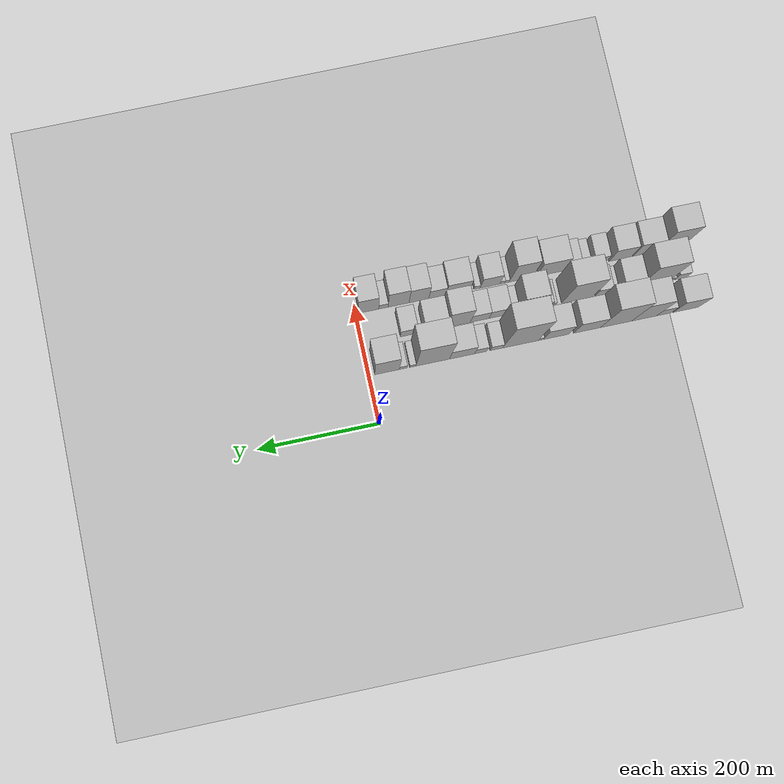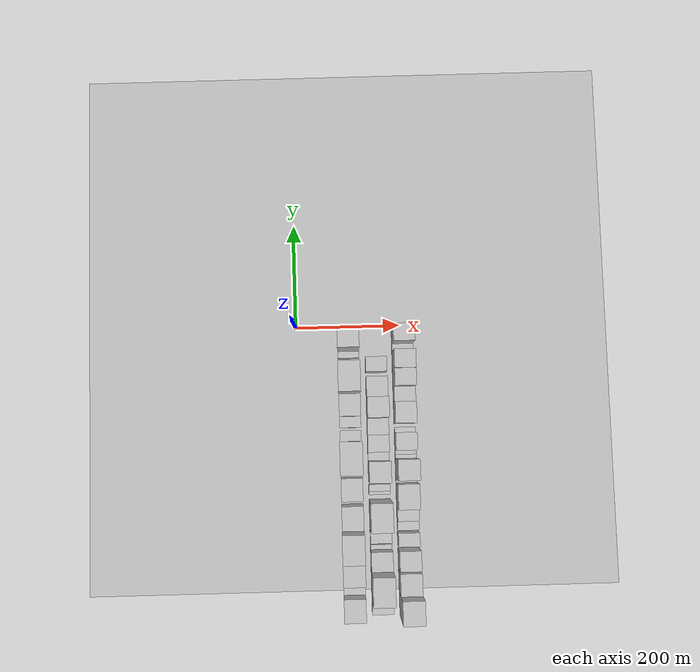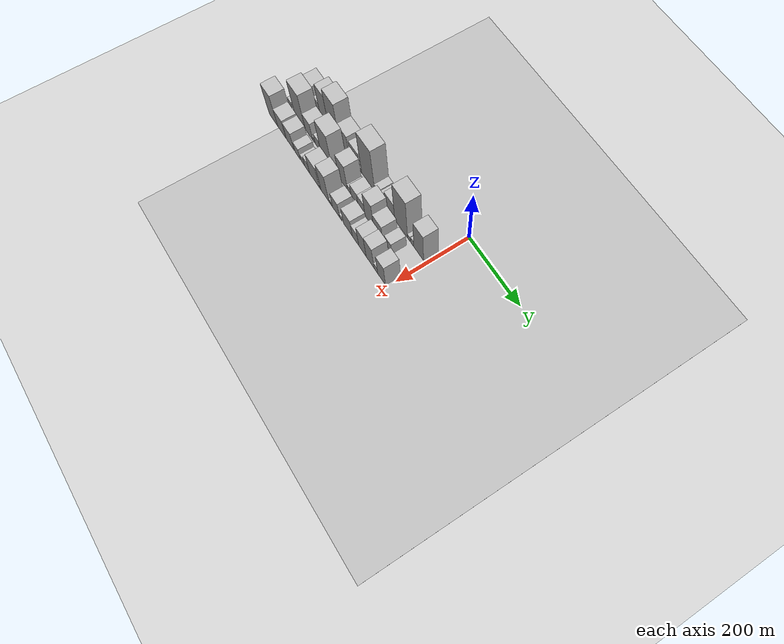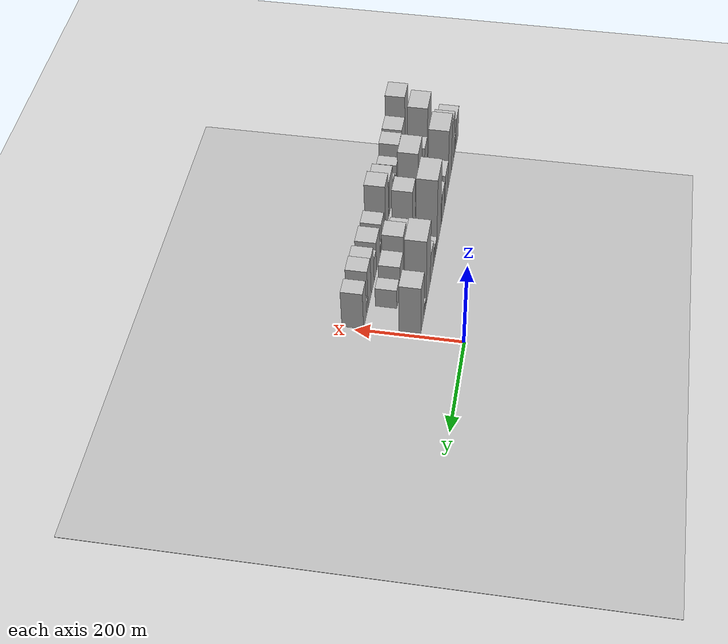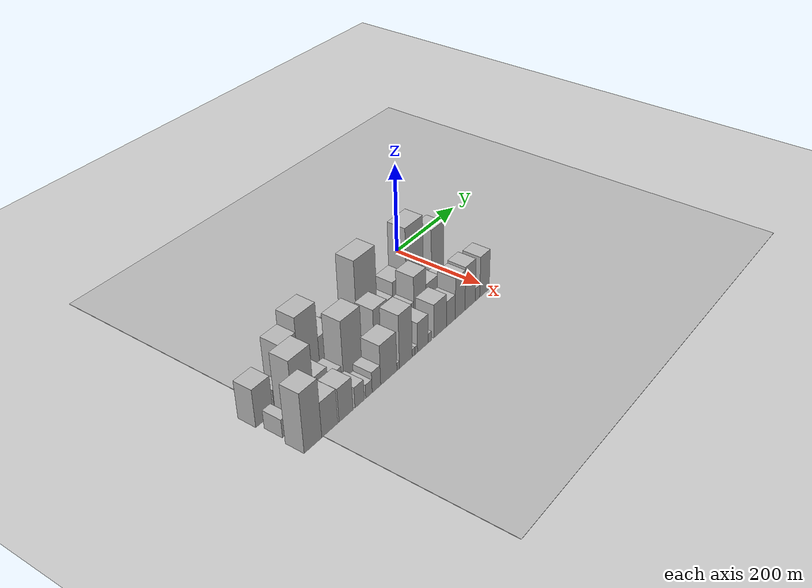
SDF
<sdf version="1.6">
 <world name="default">
  <include><name>ground_plane_1</name><uri>model://HANNAS_ground_plane</uri></include>
  <include>
   <name>ground_plane_2</name>
   <uri>model://HANNAS_ground_plane</uri>
   <pose>100 0 0  0 0 0</pose>
  </include>
  <model name="building_1">
   <static>1</static>
   <pose>100.0000 -526.6972 0 0.000000 0.000000 0.000000</pose>
   <link name="link">
    <pose>0 0 40.50 0 0 0</pose>
    <collision name="collision"><geometry><box><size>40.0000 42.6056 81.0000</size></box></geometry></collision>
    <visual name="visual">
     <cast_shadows>0</cast_shadows>
     <geometry><box><size>40.0000 42.6056 81.0000</size></box></geometry>
     <material>
      <script>
       <uri>model://HANNAS_wall/materials/scripts</uri>
       <uri>model://HANNAS_wall/materials/textures</uri>
       <name>vrc/HANNAS_wall</name>
      </script>
     </material>
    </visual>
   </link>
  </model>
  <model name="building_2">
   <static>1</static>
   <pose>100.0000 -490.2368 0 0.000000 0.000000 0.000000</pose>
   <link name="link">
    <pose>0 0 24.00 0 0 0</pose>
    <collision name="collision"><geometry><box><size>40.0000 24.3152 48.0000</size></box></geometry></collision>
    <visual name="visual">
     <cast_shadows>0</cast_shadows>
     <geometry><box><size>40.0000 24.3152 48.0000</size></box></geometry>
     <material>
      <script>
       <uri>model://HANNAS_wall/materials/scripts</uri>
       <uri>model://HANNAS_wall/materials/textures</uri>
       <name>vrc/HANNAS_wall</name>
      </script>
     </material>
    </visual>
   </link>
  </model>
  <model name="building_3">
   <static>1</static>
   <pose>100.0000 -457.3275 0 0.000000 0.000000 0.000000</pose>
   <link name="link">
    <pose>0 0 63.00 0 0 0</pose>
    <collision name="collision"><geometry><box><size>40.0000 41.5033 126.0000</size></box></geometry></collision>
    <visual name="visual">
     <cast_shadows>0</cast_shadows>
     <geometry><box><size>40.0000 41.5033 126.0000</size></box></geometry>
     <material>
      <script>
       <uri>model://HANNAS_wall/materials/scripts</uri>
       <uri>model://HANNAS_wall/materials/textures</uri>
       <name>vrc/HANNAS_wall</name>
      </script>
     </material>
    </visual>
   </link>
  </model>
  <model name="building_4">
   <static>1</static>
   <pose>100.0000 -410.2595 0 0.000000 0.000000 0.000000</pose>
   <link name="link">
    <pose>0 0 78.00 0 0 0</pose>
    <collision name="collision"><geometry><box><size>40.0000 52.6326 156.0000</size></box></geometry></collision>
    <visual name="visual">
     <cast_shadows>0</cast_shadows>
     <geometry><box><size>40.0000 52.6326 156.0000</size></box></geometry>
     <material>
      <script>
       <uri>model://HANNAS_wall/materials/scripts</uri>
       <uri>model://HANNAS_wall/materials/textures</uri>
       <name>vrc/HANNAS_wall</name>
      </script>
     </material>
    </visual>
   </link>
  </model>
  <model name="building_5">
   <static>1</static>
   <pose>100.0000 -361.5258 0 0.000000 0.000000 0.000000</pose>
   <link name="link">
    <pose>0 0 40.50 0 0 0</pose>
    <collision name="collision"><geometry><box><size>40.0000 44.8348 81.0000</size></box></geometry></collision>
    <visual name="visual">
     <cast_shadows>0</cast_shadows>
     <geometry><box><size>40.0000 44.8348 81.0000</size></box></geometry>
     <material>
      <script>
       <uri>model://HANNAS_wall/materials/scripts</uri>
       <uri>model://HANNAS_wall/materials/textures</uri>
       <name>vrc/HANNAS_wall</name>
      </script>
     </material>
    </visual>
   </link>
  </model>
  <model name="building_6">
   <static>1</static>
   <pose>100.0000 -309.7806 0 0.000000 0.000000 0.000000</pose>
   <link name="link">
    <pose>0 0 37.50 0 0 0</pose>
    <collision name="collision"><geometry><box><size>40.0000 42.6557 75.0000</size></box></geometry></collision>
    <visual name="visual">
     <cast_shadows>0</cast_shadows>
     <geometry><box><size>40.0000 42.6557 75.0000</size></box></geometry>
     <material>
      <script>
       <uri>model://HANNAS_wall/materials/scripts</uri>
       <uri>model://HANNAS_wall/materials/textures</uri>
       <name>vrc/HANNAS_wall</name>
      </script>
     </material>
    </visual>
   </link>
  </model>
  <model name="building_7">
   <static>1</static>
   <pose>100.0000 -284.2996 0 0.000000 0.000000 0.000000</pose>
   <link name="link">
    <pose>0 0 9.00 0 0 0</pose>
    <collision name="collision"><geometry><box><size>40.0000 8.3063 18.0000</size></box></geometry></collision>
    <visual name="visual">
     <cast_shadows>0</cast_shadows>
     <geometry><box><size>40.0000 8.3063 18.0000</size></box></geometry>
     <material>
      <script>
       <uri>model://HANNAS_wall/materials/scripts</uri>
       <uri>model://HANNAS_wall/materials/textures</uri>
       <name>vrc/HANNAS_wall</name>
      </script>
     </material>
    </visual>
   </link>
  </model>
  <model name="building_8">
   <static>1</static>
   <pose>100.0000 -250.4863 0 0.000000 0.000000 0.000000</pose>
   <link name="link">
    <pose>0 0 90.00 0 0 0</pose>
    <collision name="collision"><geometry><box><size>40.0000 59.3203 180.0000</size></box></geometry></collision>
    <visual name="visual">
     <cast_shadows>0</cast_shadows>
     <geometry><box><size>40.0000 59.3203 180.0000</size></box></geometry>
     <material>
      <script>
       <uri>model://HANNAS_wall/materials/scripts</uri>
       <uri>model://HANNAS_wall/materials/textures</uri>
       <name>vrc/HANNAS_wall</name>
      </script>
     </material>
    </visual>
   </link>
  </model>
  <model name="building_9">
   <static>1</static>
   <pose>100.0000 -210.4761 0 0.000000 0.000000 0.000000</pose>
   <link name="link">
    <pose>0 0 18.00 0 0 0</pose>
    <collision name="collision"><geometry><box><size>40.0000 20.7000 36.0000</size></box></geometry></collision>
    <visual name="visual">
     <cast_shadows>0</cast_shadows>
     <geometry><box><size>40.0000 20.7000 36.0000</size></box></geometry>
     <material>
      <script>
       <uri>model://HANNAS_wall/materials/scripts</uri>
       <uri>model://HANNAS_wall/materials/textures</uri>
       <name>vrc/HANNAS_wall</name>
      </script>
     </material>
    </visual>
   </link>
  </model>
  <model name="building_10">
   <static>1</static>
   <pose>100.0000 -184.6078 0 0.000000 0.000000 0.000000</pose>
   <link name="link">
    <pose>0 0 21.00 0 0 0</pose>
    <collision name="collision"><geometry><box><size>40.0000 21.0366 42.0000</size></box></geometry></collision>
    <visual name="visual">
     <cast_shadows>0</cast_shadows>
     <geometry><box><size>40.0000 21.0366 42.0000</size></box></geometry>
     <material>
      <script>
       <uri>model://HANNAS_wall/materials/scripts</uri>
       <uri>model://HANNAS_wall/materials/textures</uri>
       <name>vrc/HANNAS_wall</name>
      </script>
     </material>
    </visual>
   </link>
  </model>
  <model name="building_11">
   <static>1</static>
   <pose>100.0000 -153.2782 0 0.000000 0.000000 0.000000</pose>
   <link name="link">
    <pose>0 0 36.00 0 0 0</pose>
    <collision name="collision"><geometry><box><size>40.0000 41.6225 72.0000</size></box></geometry></collision>
    <visual name="visual">
     <cast_shadows>0</cast_shadows>
     <geometry><box><size>40.0000 41.6225 72.0000</size></box></geometry>
     <material>
      <script>
       <uri>model://HANNAS_wall/materials/scripts</uri>
       <uri>model://HANNAS_wall/materials/textures</uri>
       <name>vrc/HANNAS_wall</name>
      </script>
     </material>
    </visual>
   </link>
  </model>
  <model name="building_12">
   <static>1</static>
   <pose>100.0000 -104.8603 0 0.000000 0.000000 0.000000</pose>
   <link name="link">
    <pose>0 0 84.00 0 0 0</pose>
    <collision name="collision"><geometry><box><size>40.0000 55.2134 168.0000</size></box></geometry></collision>
    <visual name="visual">
     <cast_shadows>0</cast_shadows>
     <geometry><box><size>40.0000 55.2134 168.0000</size></box></geometry>
     <material>
      <script>
       <uri>model://HANNAS_wall/materials/scripts</uri>
       <uri>model://HANNAS_wall/materials/textures</uri>
       <name>vrc/HANNAS_wall</name>
      </script>
     </material>
    </visual>
   </link>
  </model>
  <model name="building_13">
   <static>1</static>
   <pose>100.0000 -72.0051 0 0.000000 0.000000 0.000000</pose>
   <link name="link">
    <pose>0 0 10.50 0 0 0</pose>
    <collision name="collision"><geometry><box><size>40.0000 10.4969 21.0000</size></box></geometry></collision>
    <visual name="visual">
     <cast_shadows>0</cast_shadows>
     <geometry><box><size>40.0000 10.4969 21.0000</size></box></geometry>
     <material>
      <script>
       <uri>model://HANNAS_wall/materials/scripts</uri>
       <uri>model://HANNAS_wall/materials/textures</uri>
       <name>vrc/HANNAS_wall</name>
      </script>
     </material>
    </visual>
   </link>
  </model>
  <model name="building_14">
   <static>1</static>
   <pose>100.0000 -56.4145 0 0.000000 0.000000 0.000000</pose>
   <link name="link">
    <pose>0 0 13.50 0 0 0</pose>
    <collision name="collision"><geometry><box><size>40.0000 12.6842 27.0000</size></box></geometry></collision>
    <visual name="visual">
     <cast_shadows>0</cast_shadows>
     <geometry><box><size>40.0000 12.6842 27.0000</size></box></geometry>
     <material>
      <script>
       <uri>model://HANNAS_wall/materials/scripts</uri>
       <uri>model://HANNAS_wall/materials/textures</uri>
       <name>vrc/HANNAS_wall</name>
      </script>
     </material>
    </visual>
   </link>
  </model>
  <model name="building_15">
   <static>1</static>
   <pose>100.0000 -29.7221 0 0.000000 0.000000 0.000000</pose>
   <link name="link">
    <pose>0 0 60.00 0 0 0</pose>
    <collision name="collision"><geometry><box><size>40.0000 40.7008 120.0000</size></box></geometry></collision>
    <visual name="visual">
     <cast_shadows>0</cast_shadows>
     <geometry><box><size>40.0000 40.7008 120.0000</size></box></geometry>
     <material>
      <script>
       <uri>model://HANNAS_wall/materials/scripts</uri>
       <uri>model://HANNAS_wall/materials/textures</uri>
       <name>vrc/HANNAS_wall</name>
      </script>
     </material>
    </visual>
   </link>
  </model>
  <model name="building_32">
   <static>1</static>
   <pose>152.0000 -530.9299 0 0.000000 0.000000 0.000000</pose>
   <link name="link">
    <pose>0 0 19.50 0 0 0</pose>
    <collision name="collision"><geometry><box><size>40.0000 20.1402 39.0000</size></box></geometry></collision>
    <visual name="visual">
     <cast_shadows>0</cast_shadows>
     <geometry><box><size>40.0000 20.1402 39.0000</size></box></geometry>
     <material>
      <script>
       <uri>model://HANNAS_wall/materials/scripts</uri>
       <uri>model://HANNAS_wall/materials/textures</uri>
       <name>vrc/HANNAS_wall</name>
      </script>
     </material>
    </visual>
   </link>
  </model>
  <model name="building_33">
   <static>1</static>
   <pose>152.0000 -516.4928 0 0.000000 0.000000 0.000000</pose>
   <link name="link">
    <pose>0 0 9.00 0 0 0</pose>
    <collision name="collision"><geometry><box><size>40.0000 8.7341 18.0000</size></box></geometry></collision>
    <visual name="visual">
     <cast_shadows>0</cast_shadows>
     <geometry><box><size>40.0000 8.7341 18.0000</size></box></geometry>
     <material>
      <script>
       <uri>model://HANNAS_wall/materials/scripts</uri>
       <uri>model://HANNAS_wall/materials/textures</uri>
       <name>vrc/HANNAS_wall</name>
      </script>
     </material>
    </visual>
   </link>
  </model>
  <model name="building_34">
   <static>1</static>
   <pose>152.0000 -486.0516 0 0.000000 0.000000 0.000000</pose>
   <link name="link">
    <pose>0 0 70.50 0 0 0</pose>
    <collision name="collision"><geometry><box><size>40.0000 52.1482 141.0000</size></box></geometry></collision>
    <visual name="visual">
     <cast_shadows>0</cast_shadows>
     <geometry><box><size>40.0000 52.1482 141.0000</size></box></geometry>
     <material>
      <script>
       <uri>model://HANNAS_wall/materials/scripts</uri>
       <uri>model://HANNAS_wall/materials/textures</uri>
       <name>vrc/HANNAS_wall</name>
      </script>
     </material>
    </visual>
   </link>
  </model>
  <model name="building_35">
   <static>1</static>
   <pose>152.0000 -441.9299 0 0.000000 0.000000 0.000000</pose>
   <link name="link">
    <pose>0 0 34.50 0 0 0</pose>
    <collision name="collision"><geometry><box><size>40.0000 36.0953 69.0000</size></box></geometry></collision>
    <visual name="visual">
     <cast_shadows>0</cast_shadows>
     <geometry><box><size>40.0000 36.0953 69.0000</size></box></geometry>
     <material>
      <script>
       <uri>model://HANNAS_wall/materials/scripts</uri>
       <uri>model://HANNAS_wall/materials/textures</uri>
       <name>vrc/HANNAS_wall</name>
      </script>
     </material>
    </visual>
   </link>
  </model>
  <model name="building_36">
   <static>1</static>
   <pose>152.0000 -419.4189 0 0.000000 0.000000 0.000000</pose>
   <link name="link">
    <pose>0 0 10.50 0 0 0</pose>
    <collision name="collision"><geometry><box><size>40.0000 8.9266 21.0000</size></box></geometry></collision>
    <visual name="visual">
     <cast_shadows>0</cast_shadows>
     <geometry><box><size>40.0000 8.9266 21.0000</size></box></geometry>
     <material>
      <script>
       <uri>model://HANNAS_wall/materials/scripts</uri>
       <uri>model://HANNAS_wall/materials/textures</uri>
       <name>vrc/HANNAS_wall</name>
      </script>
     </material>
    </visual>
   </link>
  </model>
  <model name="building_37">
   <static>1</static>
   <pose>152.0000 -399.2062 0 0.000000 0.000000 0.000000</pose>
   <link name="link">
    <pose>0 0 22.50 0 0 0</pose>
    <collision name="collision"><geometry><box><size>40.0000 23.4989 45.0000</size></box></geometry></collision>
    <visual name="visual">
     <cast_shadows>0</cast_shadows>
     <geometry><box><size>40.0000 23.4989 45.0000</size></box></geometry>
     <material>
      <script>
       <uri>model://HANNAS_wall/materials/scripts</uri>
       <uri>model://HANNAS_wall/materials/textures</uri>
       <name>vrc/HANNAS_wall</name>
      </script>
     </material>
    </visual>
   </link>
  </model>
  <model name="building_38">
   <static>1</static>
   <pose>152.0000 -357.3748 0 0.000000 0.000000 0.000000</pose>
   <link name="link">
    <pose>0 0 69.00 0 0 0</pose>
    <collision name="collision"><geometry><box><size>40.0000 52.1639 138.0000</size></box></geometry></collision>
    <visual name="visual">
     <cast_shadows>0</cast_shadows>
     <geometry><box><size>40.0000 52.1639 138.0000</size></box></geometry>
     <material>
      <script>
       <uri>model://HANNAS_wall/materials/scripts</uri>
       <uri>model://HANNAS_wall/materials/textures</uri>
       <name>vrc/HANNAS_wall</name>
      </script>
     </material>
    </visual>
   </link>
  </model>
  <model name="building_39">
   <static>1</static>
   <pose>152.0000 -319.0195 0 0.000000 0.000000 0.000000</pose>
   <link name="link">
    <pose>0 0 7.50 0 0 0</pose>
    <collision name="collision"><geometry><box><size>40.0000 6.5467 15.0000</size></box></geometry></collision>
    <visual name="visual">
     <cast_shadows>0</cast_shadows>
     <geometry><box><size>40.0000 6.5467 15.0000</size></box></geometry>
     <material>
      <script>
       <uri>model://HANNAS_wall/materials/scripts</uri>
       <uri>model://HANNAS_wall/materials/textures</uri>
       <name>vrc/HANNAS_wall</name>
      </script>
     </material>
    </visual>
   </link>
  </model>
  <model name="building_40">
   <static>1</static>
   <pose>152.0000 -309.1297 0 0.000000 0.000000 0.000000</pose>
   <link name="link">
    <pose>0 0 13.50 0 0 0</pose>
    <collision name="collision"><geometry><box><size>40.0000 13.2327 27.0000</size></box></geometry></collision>
    <visual name="visual">
     <cast_shadows>0</cast_shadows>
     <geometry><box><size>40.0000 13.2327 27.0000</size></box></geometry>
     <material>
      <script>
       <uri>model://HANNAS_wall/materials/scripts</uri>
       <uri>model://HANNAS_wall/materials/textures</uri>
       <name>vrc/HANNAS_wall</name>
      </script>
     </material>
    </visual>
   </link>
  </model>
  <model name="building_41">
   <static>1</static>
   <pose>152.0000 -277.9080 0 0.000000 0.000000 0.000000</pose>
   <link name="link">
    <pose>0 0 54.00 0 0 0</pose>
    <collision name="collision"><geometry><box><size>40.0000 39.2107 108.0000</size></box></geometry></collision>
    <visual name="visual">
     <cast_shadows>0</cast_shadows>
     <geometry><box><size>40.0000 39.2107 108.0000</size></box></geometry>
     <material>
      <script>
       <uri>model://HANNAS_wall/materials/scripts</uri>
       <uri>model://HANNAS_wall/materials/textures</uri>
       <name>vrc/HANNAS_wall</name>
      </script>
     </material>
    </visual>
   </link>
  </model>
  <model name="building_42">
   <static>1</static>
   <pose>152.0000 -250.2431 0 0.000000 0.000000 0.000000</pose>
   <link name="link">
    <pose>0 0 15.00 0 0 0</pose>
    <collision name="collision"><geometry><box><size>40.0000 16.1190 30.0000</size></box></geometry></collision>
    <visual name="visual">
     <cast_shadows>0</cast_shadows>
     <geometry><box><size>40.0000 16.1190 30.0000</size></box></geometry>
     <material>
      <script>
       <uri>model://HANNAS_wall/materials/scripts</uri>
       <uri>model://HANNAS_wall/materials/textures</uri>
       <name>vrc/HANNAS_wall</name>
      </script>
     </material>
    </visual>
   </link>
  </model>
  <model name="building_43">
   <static>1</static>
   <pose>152.0000 -226.0797 0 0.000000 0.000000 0.000000</pose>
   <link name="link">
    <pose>0 0 27.00 0 0 0</pose>
    <collision name="collision"><geometry><box><size>40.0000 32.2078 54.0000</size></box></geometry></collision>
    <visual name="visual">
     <cast_shadows>0</cast_shadows>
     <geometry><box><size>40.0000 32.2078 54.0000</size></box></geometry>
     <material>
      <script>
       <uri>model://HANNAS_wall/materials/scripts</uri>
       <uri>model://HANNAS_wall/materials/textures</uri>
       <name>vrc/HANNAS_wall</name>
      </script>
     </material>
    </visual>
   </link>
  </model>
  <model name="building_44">
   <static>1</static>
   <pose>152.0000 -194.4050 0 0.000000 0.000000 0.000000</pose>
   <link name="link">
    <pose>0 0 27.00 0 0 0</pose>
    <collision name="collision"><geometry><box><size>40.0000 31.1416 54.0000</size></box></geometry></collision>
    <visual name="visual">
     <cast_shadows>0</cast_shadows>
     <geometry><box><size>40.0000 31.1416 54.0000</size></box></geometry>
     <material>
      <script>
       <uri>model://HANNAS_wall/materials/scripts</uri>
       <uri>model://HANNAS_wall/materials/textures</uri>
       <name>vrc/HANNAS_wall</name>
      </script>
     </material>
    </visual>
   </link>
  </model>
  <model name="building_45">
   <static>1</static>
   <pose>152.0000 -159.6991 0 0.000000 0.000000 0.000000</pose>
   <link name="link">
    <pose>0 0 54.00 0 0 0</pose>
    <collision name="collision"><geometry><box><size>40.0000 38.2703 108.0000</size></box></geometry></collision>
    <visual name="visual">
     <cast_shadows>0</cast_shadows>
     <geometry><box><size>40.0000 38.2703 108.0000</size></box></geometry>
     <material>
      <script>
       <uri>model://HANNAS_wall/materials/scripts</uri>
       <uri>model://HANNAS_wall/materials/textures</uri>
       <name>vrc/HANNAS_wall</name>
      </script>
     </material>
    </visual>
   </link>
  </model>
  <model name="building_46">
   <static>1</static>
   <pose>152.0000 -120.7294 0 0.000000 0.000000 0.000000</pose>
   <link name="link">
    <pose>0 0 34.50 0 0 0</pose>
    <collision name="collision"><geometry><box><size>40.0000 39.6692 69.0000</size></box></geometry></collision>
    <visual name="visual">
     <cast_shadows>0</cast_shadows>
     <geometry><box><size>40.0000 39.6692 69.0000</size></box></geometry>
     <material>
      <script>
       <uri>model://HANNAS_wall/materials/scripts</uri>
       <uri>model://HANNAS_wall/materials/textures</uri>
       <name>vrc/HANNAS_wall</name>
      </script>
     </material>
    </visual>
   </link>
  </model>
  <model name="building_47">
   <static>1</static>
   <pose>152.0000 -76.7160 0 0.000000 0.000000 0.000000</pose>
   <link name="link">
    <pose>0 0 24.00 0 0 0</pose>
    <collision name="collision"><geometry><box><size>40.0000 28.3577 48.0000</size></box></geometry></collision>
    <visual name="visual">
     <cast_shadows>0</cast_shadows>
     <geometry><box><size>40.0000 28.3577 48.0000</size></box></geometry>
     <material>
      <script>
       <uri>model://HANNAS_wall/materials/scripts</uri>
       <uri>model://HANNAS_wall/materials/textures</uri>
       <name>vrc/HANNAS_wall</name>
      </script>
     </material>
    </visual>
   </link>
  </model>
  <model name="building_67">
   <static>1</static>
   <pose>204.0000 -526.1475 0 0.000000 0.000000 0.000000</pose>
   <link name="link">
    <pose>0 0 63.00 0 0 0</pose>
    <collision name="collision"><geometry><box><size>40.0000 43.7050 126.0000</size></box></geometry></collision>
    <visual name="visual">
     <cast_shadows>0</cast_shadows>
     <geometry><box><size>40.0000 43.7050 126.0000</size></box></geometry>
     <material>
      <script>
       <uri>model://HANNAS_wall/materials/scripts</uri>
       <uri>model://HANNAS_wall/materials/textures</uri>
       <name>vrc/HANNAS_wall</name>
      </script>
     </material>
    </visual>
   </link>
  </model>
  <model name="building_68">
   <static>1</static>
   <pose>204.0000 -483.8965 0 0.000000 0.000000 0.000000</pose>
   <link name="link">
    <pose>0 0 37.50 0 0 0</pose>
    <collision name="collision"><geometry><box><size>40.0000 40.7970 75.0000</size></box></geometry></collision>
    <visual name="visual">
     <cast_shadows>0</cast_shadows>
     <geometry><box><size>40.0000 40.7970 75.0000</size></box></geometry>
     <material>
      <script>
       <uri>model://HANNAS_wall/materials/scripts</uri>
       <uri>model://HANNAS_wall/materials/textures</uri>
       <name>vrc/HANNAS_wall</name>
      </script>
     </material>
    </visual>
   </link>
  </model>
  <model name="building_69">
   <static>1</static>
   <pose>204.0000 -441.9550 0 0.000000 0.000000 0.000000</pose>
   <link name="link">
    <pose>0 0 36.00 0 0 0</pose>
    <collision name="collision"><geometry><box><size>40.0000 37.0860 72.0000</size></box></geometry></collision>
    <visual name="visual">
     <cast_shadows>0</cast_shadows>
     <geometry><box><size>40.0000 37.0860 72.0000</size></box></geometry>
     <material>
      <script>
       <uri>model://HANNAS_wall/materials/scripts</uri>
       <uri>model://HANNAS_wall/materials/textures</uri>
       <name>vrc/HANNAS_wall</name>
      </script>
     </material>
    </visual>
   </link>
  </model>
  <model name="building_70">
   <static>1</static>
   <pose>204.0000 -405.7310 0 0.000000 0.000000 0.000000</pose>
   <link name="link">
    <pose>0 0 22.50 0 0 0</pose>
    <collision name="collision"><geometry><box><size>40.0000 25.3621 45.0000</size></box></geometry></collision>
    <visual name="visual">
     <cast_shadows>0</cast_shadows>
     <geometry><box><size>40.0000 25.3621 45.0000</size></box></geometry>
     <material>
      <script>
       <uri>model://HANNAS_wall/materials/scripts</uri>
       <uri>model://HANNAS_wall/materials/textures</uri>
       <name>vrc/HANNAS_wall</name>
      </script>
     </material>
    </visual>
   </link>
  </model>
  <model name="building_71">
   <static>1</static>
   <pose>204.0000 -380.2434 0 0.000000 0.000000 0.000000</pose>
   <link name="link">
    <pose>0 0 15.00 0 0 0</pose>
    <collision name="collision"><geometry><box><size>40.0000 17.6131 30.0000</size></box></geometry></collision>
    <visual name="visual">
     <cast_shadows>0</cast_shadows>
     <geometry><box><size>40.0000 17.6131 30.0000</size></box></geometry>
     <material>
      <script>
       <uri>model://HANNAS_wall/materials/scripts</uri>
       <uri>model://HANNAS_wall/materials/textures</uri>
       <name>vrc/HANNAS_wall</name>
      </script>
     </material>
    </visual>
   </link>
  </model>
  <model name="building_72">
   <static>1</static>
   <pose>204.0000 -359.5103 0 0.000000 0.000000 0.000000</pose>
   <link name="link">
    <pose>0 0 22.50 0 0 0</pose>
    <collision name="collision"><geometry><box><size>40.0000 23.8530 45.0000</size></box></geometry></collision>
    <visual name="visual">
     <cast_shadows>0</cast_shadows>
     <geometry><box><size>40.0000 23.8530 45.0000</size></box></geometry>
     <material>
      <script>
       <uri>model://HANNAS_wall/materials/scripts</uri>
       <uri>model://HANNAS_wall/materials/textures</uri>
       <name>vrc/HANNAS_wall</name>
      </script>
     </material>
    </visual>
   </link>
  </model>
  <model name="building_73">
   <static>1</static>
   <pose>204.0000 -324.4090 0 0.000000 0.000000 0.000000</pose>
   <link name="link">
    <pose>0 0 43.50 0 0 0</pose>
    <collision name="collision"><geometry><box><size>40.0000 46.3496 87.0000</size></box></geometry></collision>
    <visual name="visual">
     <cast_shadows>0</cast_shadows>
     <geometry><box><size>40.0000 46.3496 87.0000</size></box></geometry>
     <material>
      <script>
       <uri>model://HANNAS_wall/materials/scripts</uri>
       <uri>model://HANNAS_wall/materials/textures</uri>
       <name>vrc/HANNAS_wall</name>
      </script>
     </material>
    </visual>
   </link>
  </model>
  <model name="building_74">
   <static>1</static>
   <pose>204.0000 -297.5049 0 0.000000 0.000000 0.000000</pose>
   <link name="link">
    <pose>0 0 9.00 0 0 0</pose>
    <collision name="collision"><geometry><box><size>40.0000 7.4587 18.0000</size></box></geometry></collision>
    <visual name="visual">
     <cast_shadows>0</cast_shadows>
     <geometry><box><size>40.0000 7.4587 18.0000</size></box></geometry>
     <material>
      <script>
       <uri>model://HANNAS_wall/materials/scripts</uri>
       <uri>model://HANNAS_wall/materials/textures</uri>
       <name>vrc/HANNAS_wall</name>
      </script>
     </material>
    </visual>
   </link>
  </model>
  <model name="building_75">
   <static>1</static>
   <pose>204.0000 -274.6653 0 0.000000 0.000000 0.000000</pose>
   <link name="link">
    <pose>0 0 58.50 0 0 0</pose>
    <collision name="collision"><geometry><box><size>40.0000 38.2204 117.0000</size></box></geometry></collision>
    <visual name="visual">
     <cast_shadows>0</cast_shadows>
     <geometry><box><size>40.0000 38.2204 117.0000</size></box></geometry>
     <material>
      <script>
       <uri>model://HANNAS_wall/materials/scripts</uri>
       <uri>model://HANNAS_wall/materials/textures</uri>
       <name>vrc/HANNAS_wall</name>
      </script>
     </material>
    </visual>
   </link>
  </model>
  <model name="building_76">
   <static>1</static>
   <pose>204.0000 -251.7456 0 0.000000 0.000000 0.000000</pose>
   <link name="link">
    <pose>0 0 9.00 0 0 0</pose>
    <collision name="collision"><geometry><box><size>40.0000 7.6190 18.0000</size></box></geometry></collision>
    <visual name="visual">
     <cast_shadows>0</cast_shadows>
     <geometry><box><size>40.0000 7.6190 18.0000</size></box></geometry>
     <material>
      <script>
       <uri>model://HANNAS_wall/materials/scripts</uri>
       <uri>model://HANNAS_wall/materials/textures</uri>
       <name>vrc/HANNAS_wall</name>
      </script>
     </material>
    </visual>
   </link>
  </model>
  <model name="building_77">
   <static>1</static>
   <pose>204.0000 -243.8788 0 0.000000 0.000000 0.000000</pose>
   <link name="link">
    <pose>0 0 9.00 0 0 0</pose>
    <collision name="collision"><geometry><box><size>40.0000 8.1144 18.0000</size></box></geometry></collision>
    <visual name="visual">
     <cast_shadows>0</cast_shadows>
     <geometry><box><size>40.0000 8.1144 18.0000</size></box></geometry>
     <material>
      <script>
       <uri>model://HANNAS_wall/materials/scripts</uri>
       <uri>model://HANNAS_wall/materials/textures</uri>
       <name>vrc/HANNAS_wall</name>
      </script>
     </material>
    </visual>
   </link>
  </model>
  <model name="building_78">
   <static>1</static>
   <pose>204.0000 -223.1981 0 0.000000 0.000000 0.000000</pose>
   <link name="link">
    <pose>0 0 33.00 0 0 0</pose>
    <collision name="collision"><geometry><box><size>40.0000 33.2470 66.0000</size></box></geometry></collision>
    <visual name="visual">
     <cast_shadows>0</cast_shadows>
     <geometry><box><size>40.0000 33.2470 66.0000</size></box></geometry>
     <material>
      <script>
       <uri>model://HANNAS_wall/materials/scripts</uri>
       <uri>model://HANNAS_wall/materials/textures</uri>
       <name>vrc/HANNAS_wall</name>
      </script>
     </material>
    </visual>
   </link>
  </model>
  <model name="building_79">
   <static>1</static>
   <pose>204.0000 -201.5403 0 0.000000 0.000000 0.000000</pose>
   <link name="link">
    <pose>0 0 10.50 0 0 0</pose>
    <collision name="collision"><geometry><box><size>40.0000 10.0686 21.0000</size></box></geometry></collision>
    <visual name="visual">
     <cast_shadows>0</cast_shadows>
     <geometry><box><size>40.0000 10.0686 21.0000</size></box></geometry>
     <material>
      <script>
       <uri>model://HANNAS_wall/materials/scripts</uri>
       <uri>model://HANNAS_wall/materials/textures</uri>
       <name>vrc/HANNAS_wall</name>
      </script>
     </material>
    </visual>
   </link>
  </model>
  <model name="building_80">
   <static>1</static>
   <pose>204.0000 -169.5185 0 0.000000 0.000000 0.000000</pose>
   <link name="link">
    <pose>0 0 37.50 0 0 0</pose>
    <collision name="collision"><geometry><box><size>40.0000 39.9749 75.0000</size></box></geometry></collision>
    <visual name="visual">
     <cast_shadows>0</cast_shadows>
     <geometry><box><size>40.0000 39.9749 75.0000</size></box></geometry>
     <material>
      <script>
       <uri>model://HANNAS_wall/materials/scripts</uri>
       <uri>model://HANNAS_wall/materials/textures</uri>
       <name>vrc/HANNAS_wall</name>
      </script>
     </material>
    </visual>
   </link>
  </model>
  <model name="building_81">
   <static>1</static>
   <pose>204.0000 -135.1676 0 0.000000 0.000000 0.000000</pose>
   <link name="link">
    <pose>0 0 28.50 0 0 0</pose>
    <collision name="collision"><geometry><box><size>40.0000 28.7269 57.0000</size></box></geometry></collision>
    <visual name="visual">
     <cast_shadows>0</cast_shadows>
     <geometry><box><size>40.0000 28.7269 57.0000</size></box></geometry>
     <material>
      <script>
       <uri>model://HANNAS_wall/materials/scripts</uri>
       <uri>model://HANNAS_wall/materials/textures</uri>
       <name>vrc/HANNAS_wall</name>
      </script>
     </material>
    </visual>
   </link>
  </model>
  <model name="building_82">
   <static>1</static>
   <pose>204.0000 -104.5953 0 0.000000 0.000000 0.000000</pose>
   <link name="link">
    <pose>0 0 46.50 0 0 0</pose>
    <collision name="collision"><geometry><box><size>40.0000 32.4177 93.0000</size></box></geometry></collision>
    <visual name="visual">
     <cast_shadows>0</cast_shadows>
     <geometry><box><size>40.0000 32.4177 93.0000</size></box></geometry>
     <material>
      <script>
       <uri>model://HANNAS_wall/materials/scripts</uri>
       <uri>model://HANNAS_wall/materials/textures</uri>
       <name>vrc/HANNAS_wall</name>
      </script>
     </material>
    </visual>
   </link>
  </model>
  <model name="building_83">
   <static>1</static>
   <pose>204.0000 -71.0190 0 0.000000 0.000000 0.000000</pose>
   <link name="link">
    <pose>0 0 49.50 0 0 0</pose>
    <collision name="collision"><geometry><box><size>40.0000 34.7349 99.0000</size></box></geometry></collision>
    <visual name="visual">
     <cast_shadows>0</cast_shadows>
     <geometry><box><size>40.0000 34.7349 99.0000</size></box></geometry>
     <material>
      <script>
       <uri>model://HANNAS_wall/materials/scripts</uri>
       <uri>model://HANNAS_wall/materials/textures</uri>
       <name>vrc/HANNAS_wall</name>
      </script>
     </material>
    </visual>
   </link>
  </model>
  <model name="building_84">
   <static>1</static>
   <pose>204.0000 -45.8547 0 0.000000 0.000000 0.000000</pose>
   <link name="link">
    <pose>0 0 15.00 0 0 0</pose>
    <collision name="collision"><geometry><box><size>40.0000 15.5938 30.0000</size></box></geometry></collision>
    <visual name="visual">
     <cast_shadows>0</cast_shadows>
     <geometry><box><size>40.0000 15.5938 30.0000</size></box></geometry>
     <material>
      <script>
       <uri>model://HANNAS_wall/materials/scripts</uri>
       <uri>model://HANNAS_wall/materials/textures</uri>
       <name>vrc/HANNAS_wall</name>
      </script>
     </material>
    </visual>
   </link>
  </model>
  <model name="building_85">
   <static>1</static>
   <pose>204.0000 -21.4669 0 0.000000 0.000000 0.000000</pose>
   <link name="link">
    <pose>0 0 46.50 0 0 0</pose>
    <collision name="collision"><geometry><box><size>40.0000 33.1818 93.0000</size></box></geometry></collision>
    <visual name="visual">
     <cast_shadows>0</cast_shadows>
     <geometry><box><size>40.0000 33.1818 93.0000</size></box></geometry>
     <material>
      <script>
       <uri>model://HANNAS_wall/materials/scripts</uri>
       <uri>model://HANNAS_wall/materials/textures</uri>
       <name>vrc/HANNAS_wall</name>
      </script>
     </material>
    </visual>
   </link>
  </model>
 </world>
</sdf>
